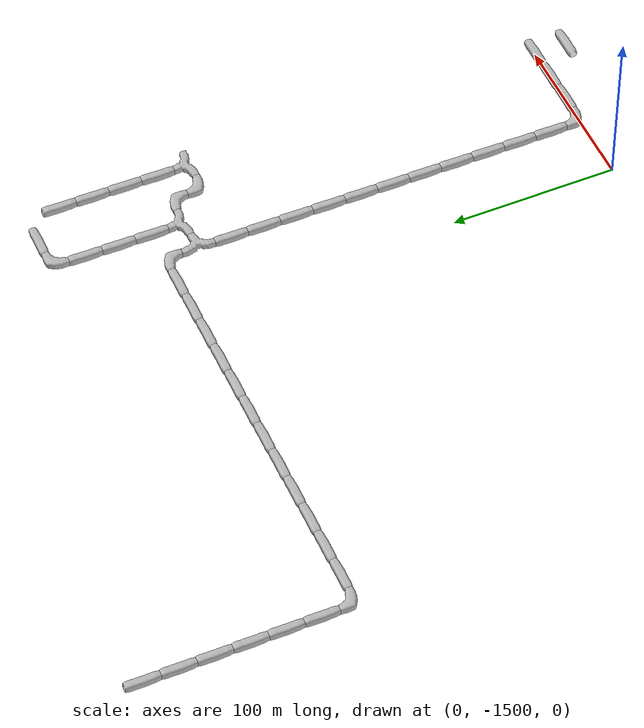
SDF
<sdf version="1.6">
 <world name="cave_16000_0">
  <include>
   <static>true</static>
   <name>cave_-11_-56</name>
   <pose>-220 -1120 0 0 0 0.0</pose>
   <uri>model://cave_straight_20m</uri>
  </include>
  <include>
   <static>true</static>
   <name>cave_-11_-57</name>
   <pose>-220 -1140 0 0 0 0.0</pose>
   <uri>model://cave_straight_20m</uri>
  </include>
  <include>
   <static>true</static>
   <name>cave_-11_-58</name>
   <pose>-220 -1160 0 0 0 0.0</pose>
   <uri>model://cave_straight_20m</uri>
  </include>
  <include>
   <static>true</static>
   <name>cave_-11_-59</name>
   <pose>-220 -1180 0 0 0 0.0</pose>
   <uri>model://cave_straight_20m</uri>
  </include>
  <include>
   <static>true</static>
   <name>cave_-11_-60</name>
   <pose>-220 -1200 0 0 0 0.0</pose>
   <uri>model://cave_straight_20m</uri>
  </include>
  <include>
   <static>true</static>
   <name>cave_-11_-61</name>
   <pose>-220 -1220 0 0 0 0.0</pose>
   <uri>model://cave_straight_20m</uri>
  </include>
  <include>
   <static>true</static>
   <name>cave_-11_-62</name>
   <pose>-220 -1240 0 0 0 0.0</pose>
   <uri>model://cave_L_20m</uri>
  </include>
  <include>
   <static>true</static>
   <name>cave_-10_-62</name>
   <pose>-200 -1240 0 0 0 1.5707963267948966</pose>
   <uri>model://cave_straight_20m</uri>
  </include>
  <include>
   <static>true</static>
   <name>cave_-9_-62</name>
   <pose>-180 -1240 0 0 0 1.5707963267948966</pose>
   <uri>model://cave_straight_20m</uri>
  </include>
  <include>
   <static>true</static>
   <name>cave_-8_-62</name>
   <pose>-160 -1240 0 0 0 1.5707963267948966</pose>
   <uri>model://cave_straight_20m</uri>
  </include>
  <include>
   <static>true</static>
   <name>cave_-7_-62</name>
   <pose>-140 -1240 0 0 0 1.5707963267948966</pose>
   <uri>model://cave_straight_20m</uri>
  </include>
  <include>
   <static>true</static>
   <name>cave_-6_-62</name>
   <pose>-120 -1240 0 0 0 1.5707963267948966</pose>
   <uri>model://cave_straight_20m</uri>
  </include>
  <include>
   <static>true</static>
   <name>cave_-5_-62</name>
   <pose>-100 -1240 0 0 0 1.5707963267948966</pose>
   <uri>model://cave_straight_20m</uri>
  </include>
  <include>
   <static>true</static>
   <name>cave_-4_-62</name>
   <pose>-80 -1240 0 0 0 1.5707963267948966</pose>
   <uri>model://cave_straight_20m</uri>
  </include>
  <include>
   <static>true</static>
   <name>cave_-3_-62</name>
   <pose>-60 -1240 0 0 0 1.5707963267948966</pose>
   <uri>model://cave_straight_20m</uri>
  </include>
  <include>
   <static>true</static>
   <name>cave_-2_-62</name>
   <pose>-40 -1240 0 0 0 1.5707963267948966</pose>
   <uri>model://cave_straight_20m</uri>
  </include>
  <include>
   <static>true</static>
   <name>cave_-1_-62</name>
   <pose>-20 -1240 0 0 0 1.5707963267948966</pose>
   <uri>model://cave_straight_20m</uri>
  </include>
  <include>
   <static>true</static>
   <name>cave_0_-62</name>
   <pose>0 -1240 0 0 0 1.5707963267948966</pose>
   <uri>model://cave_straight_20m</uri>
  </include>
  <include>
   <static>true</static>
   <name>cave_1_-62</name>
   <pose>20 -1240 0 0 0 1.5707963267948966</pose>
   <uri>model://cave_straight_20m</uri>
  </include>
  <include>
   <static>true</static>
   <name>cave_2_-62</name>
   <pose>40 -1240 0 0 0 3.141592653589793</pose>
   <uri>model://cave_L_20m</uri>
  </include>
  <include>
   <static>true</static>
   <name>cave_2_-63</name>
   <pose>40 -1260 0 0 0 -1.5707963267948966</pose>
   <uri>model://cave_3way_20m</uri>
  </include>
  <include>
   <static>true</static>
   <name>cave_3_-63</name>
   <pose>60 -1260 0 0 0 0.0</pose>
   <uri>model://cave_3way_20m</uri>
  </include>
  <include>
   <static>true</static>
   <name>cave_4_-63</name>
   <pose>80 -1260 0 0 0 3.141592653589793</pose>
   <uri>model://cave_L_20m</uri>
  </include>
  <include>
   <static>true</static>
   <name>cave_4_-64</name>
   <pose>80 -1280 0 0 0 0.0</pose>
   <uri>model://cave_L_20m</uri>
  </include>
  <include>
   <static>true</static>
   <name>cave_5_-64</name>
   <pose>100 -1280 0 0 0 0.0</pose>
   <uri>model://cave_3way_20m</uri>
  </include>
  <include>
   <static>true</static>
   <name>cave_5_-63</name>
   <pose>100 -1260 0 0 0 0.0</pose>
   <uri>model://cave_straight_20m</uri>
  </include>
  <include>
   <static>true</static>
   <name>cave_5_-62</name>
   <pose>100 -1240 0 0 0 0.0</pose>
   <uri>model://cave_straight_20m</uri>
  </include>
  <include>
   <static>true</static>
   <name>cave_5_-61</name>
   <pose>100 -1220 0 0 0 0.0</pose>
   <uri>model://cave_straight_20m</uri>
  </include>
  <include>
   <static>true</static>
   <name>cave_5_-60</name>
   <pose>100 -1200 0 0 0 0.0</pose>
   <uri>model://cave_straight_20m</uri>
  </include>
  <include>
   <static>true</static>
   <name>cave_3_-62</name>
   <pose>60 -1240 0 0 0 0.0</pose>
   <uri>model://cave_straight_20m</uri>
  </include>
  <include>
   <static>true</static>
   <name>cave_3_-61</name>
   <pose>60 -1220 0 0 0 0.0</pose>
   <uri>model://cave_straight_20m</uri>
  </include>
  <include>
   <static>true</static>
   <name>cave_3_-60</name>
   <pose>60 -1200 0 0 0 0.0</pose>
   <uri>model://cave_straight_20m</uri>
  </include>
  <include>
   <static>true</static>
   <name>cave_3_-59</name>
   <pose>60 -1180 0 0 0 -1.5707963267948966</pose>
   <uri>model://cave_L_20m</uri>
  </include>
  <include>
   <static>true</static>
   <name>cave_4_-59</name>
   <pose>80 -1180 0 0 0 1.5707963267948966</pose>
   <uri>model://cave_straight_20m</uri>
  </include>
  <include>
   <static>true</static>
   <name>cave_2_-64</name>
   <pose>40 -1280 0 0 0 0.0</pose>
   <uri>model://cave_straight_20m</uri>
  </include>
  <include>
   <static>true</static>
   <name>cave_2_-65</name>
   <pose>40 -1300 0 0 0 0.0</pose>
   <uri>model://cave_straight_20m</uri>
  </include>
  <include>
   <static>true</static>
   <name>cave_2_-66</name>
   <pose>40 -1320 0 0 0 0.0</pose>
   <uri>model://cave_straight_20m</uri>
  </include>
  <include>
   <static>true</static>
   <name>cave_2_-67</name>
   <pose>40 -1340 0 0 0 0.0</pose>
   <uri>model://cave_straight_20m</uri>
  </include>
  <include>
   <static>true</static>
   <name>cave_2_-68</name>
   <pose>40 -1360 0 0 0 0.0</pose>
   <uri>model://cave_straight_20m</uri>
  </include>
  <include>
   <static>true</static>
   <name>cave_2_-69</name>
   <pose>40 -1380 0 0 0 0.0</pose>
   <uri>model://cave_straight_20m</uri>
  </include>
  <include>
   <static>true</static>
   <name>cave_2_-70</name>
   <pose>40 -1400 0 0 0 0.0</pose>
   <uri>model://cave_straight_20m</uri>
  </include>
  <include>
   <static>true</static>
   <name>cave_2_-71</name>
   <pose>40 -1420 0 0 0 0.0</pose>
   <uri>model://cave_straight_20m</uri>
  </include>
  <include>
   <static>true</static>
   <name>cave_2_-72</name>
   <pose>40 -1440 0 0 0 0.0</pose>
   <uri>model://cave_straight_20m</uri>
  </include>
  <include>
   <static>true</static>
   <name>cave_2_-73</name>
   <pose>40 -1460 0 0 0 0.0</pose>
   <uri>model://cave_straight_20m</uri>
  </include>
  <include>
   <static>true</static>
   <name>cave_2_-74</name>
   <pose>40 -1480 0 0 0 0.0</pose>
   <uri>model://cave_straight_20m</uri>
  </include>
  <include>
   <static>true</static>
   <name>cave_2_-75</name>
   <pose>40 -1500 0 0 0 0.0</pose>
   <uri>model://cave_L_20m</uri>
  </include>
  <include>
   <static>true</static>
   <name>cave_3_-75</name>
   <pose>60 -1500 0 0 0 1.5707963267948966</pose>
   <uri>model://cave_straight_20m</uri>
  </include>
  <include>
   <static>true</static>
   <name>cave_4_-75</name>
   <pose>80 -1500 0 0 0 1.5707963267948966</pose>
   <uri>model://cave_straight_20m</uri>
  </include>
  <include>
   <static>true</static>
   <name>cave_5_-75</name>
   <pose>100 -1500 0 0 0 1.5707963267948966</pose>
   <uri>model://cave_straight_20m</uri>
  </include>
  <include>
   <static>true</static>
   <name>cave_5_-76</name>
   <pose>100 -1520 0 0 0 1.5707963267948966</pose>
   <uri>model://cave_straight_20m</uri>
  </include>
 </world>
</sdf>
